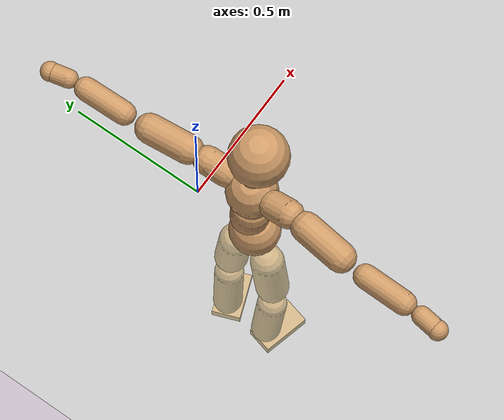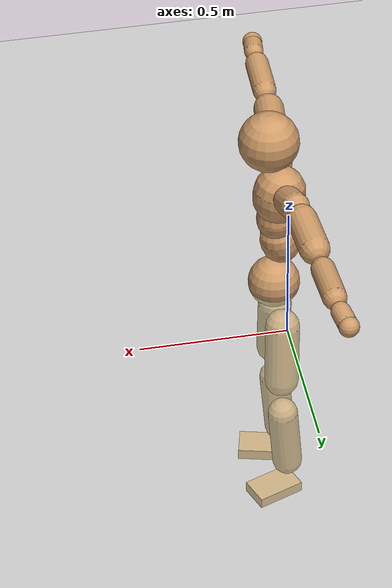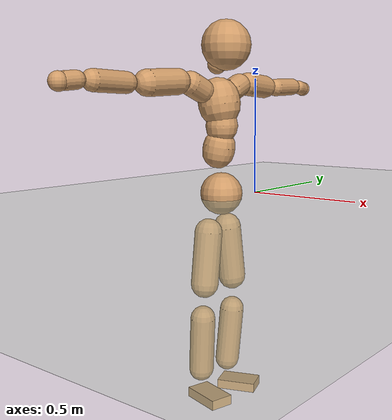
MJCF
<mujoco model="humanoid">
  <compiler coordinate="local"/>
  <default>
    <joint damping="0.0" armature="0.01" stiffness="0.0" limited="true"/>
    <geom conaffinity="1" condim="3" contype="7" margin="0.001" rgba="0.8 0.6 .4 1"/>
  </default>
  <asset>
    <texture type="skybox" builtin="gradient" rgb1=".4 .5 .6" rgb2="0 0 0" width="100" height="100"/>
    <texture builtin="flat" height="1278" mark="cross" markrgb="1 1 1" name="texgeom" random="0.01" rgb1="0.8 0.6 0.4" rgb2="0.8 0.6 0.4" type="cube" width="127"/>
    <texture builtin="checker" height="100" name="texplane" rgb1="0 0 0" rgb2="0.8 0.8 0.8" type="2d" width="100"/>
    <material name="MatPlane" reflectance="0.5" shininess="1" specular="1" texrepeat="60 60" texture="texplane"/>
    <material name="geom" texture="texgeom" texuniform="true"/>
  </asset>
  <worldbody>
    <light cutoff="100" diffuse="1 1 1" dir="-0 0 -1.3" directional="true" exponent="1" pos="0 0 1.3" specular=".1 .1 .1"/>
    <geom conaffinity="1" condim="3" name="floor" pos="0 0 0" rgba="0.8 0.9 0.8 1" size="100 100 .2" type="plane" material="MatPlane"/>
    <body name="Pelvis" pos="-0.0029 -0.237 0.0199">
      <freejoint name="Pelvis"/>
      <geom type="sphere" contype="1" conaffinity="1" density="500" size="0.0891" pos="0.0000 0.0000 0.0000" name="Pelvis"/>
      <body name="L_Hip" pos="-0.0209 0.0546 -0.0791">
        <joint name="L_Hip_x" type="hinge" pos="0 0 0" axis="1 0 0" stiffness="800" damping="80" armature="0.02" range="-180.0000 180.0000"/>
        <joint name="L_Hip_y" type="hinge" pos="0 0 0" axis="0 1 0" stiffness="800" damping="80" armature="0.02" range="-180.0000 180.0000"/>
        <joint name="L_Hip_z" type="hinge" pos="0 0 0" axis="0 0 1" stiffness="800" damping="80" armature="0.02" range="-180.0000 180.0000"/>
        <geom type="capsule" contype="1" conaffinity="1" density="500" fromto="0.0021 0.0087 -0.0744 0.0084 0.0347 -0.2976" size="0.059" name="L_Hip"/>
        <body name="L_Knee" pos="0.0105 0.0434 -0.372">
          <joint name="L_Knee_x" type="hinge" pos="0 0 0" axis="1 0 0" stiffness="800" damping="80" armature="0.02" range="-180.0000 180.0000"/>
          <joint name="L_Knee_y" type="hinge" pos="0 0 0" axis="0 1 0" stiffness="800" damping="80" armature="0.02" range="-180.0000 180.0000"/>
          <joint name="L_Knee_z" type="hinge" pos="0 0 0" axis="0 0 1" stiffness="800" damping="80" armature="0.02" range="-180.0000 180.0000"/>
          <geom type="capsule" contype="1" conaffinity="1" density="500" fromto="-0.0068 -0.0026 -0.0796 -0.0272 -0.0102 -0.3185" size="0.0522" name="L_Knee"/>
          <body name="L_Ankle" pos="-0.034 -0.0128 -0.3981">
            <joint name="L_Ankle_x" type="hinge" pos="0 0 0" axis="1 0 0" stiffness="800" damping="80" armature="0.02" range="-180.0000 180.0000"/>
            <joint name="L_Ankle_y" type="hinge" pos="0 0 0" axis="0 1 0" stiffness="800" damping="80" armature="0.02" range="-180.0000 180.0000"/>
            <joint name="L_Ankle_z" type="hinge" pos="0 0 0" axis="0 0 1" stiffness="800" damping="80" armature="0.02" range="-180.0000 180.0000"/>
            <geom type="box" contype="1" conaffinity="1" density="500" pos="0.0581 0.0219 -0.0289" size="0.0843 0.052 0.0197" quat="0.9838 0.0000 0.0000 0.1795" name="L_Ankle"/>
            <body name="L_Toe" pos="0.1161 0.0438 -0.0579">
              <joint name="L_Toe_x" type="hinge" pos="0 0 0" axis="1 0 0" stiffness="500" damping="50" armature="0.02" range="-180.0000 180.0000"/>
              <joint name="L_Toe_y" type="hinge" pos="0 0 0" axis="0 1 0" stiffness="500" damping="50" armature="0.02" range="-180.0000 180.0000"/>
              <joint name="L_Toe_z" type="hinge" pos="0 0 0" axis="0 0 1" stiffness="500" damping="50" armature="0.02" range="-180.0000 180.0000"/>
              <geom type="box" contype="1" conaffinity="1" density="500" pos="0.0000 0.0000 0.0293" size="0.001 0.0025 0.001" quat="0.9829 0.0000 0.0000 0.1840" name="L_Toe"/>
            </body>
          </body>
        </body>
      </body>
      <body name="R_Hip" pos="-0.0175 -0.0561 -0.0866">
        <joint name="R_Hip_x" type="hinge" pos="0 0 0" axis="1 0 0" stiffness="800" damping="80" armature="0.02" range="-180.0000 180.0000"/>
        <joint name="R_Hip_y" type="hinge" pos="0 0 0" axis="0 1 0" stiffness="800" damping="80" armature="0.02" range="-180.0000 180.0000"/>
        <joint name="R_Hip_z" type="hinge" pos="0 0 0" axis="0 0 1" stiffness="800" damping="80" armature="0.02" range="-180.0000 180.0000"/>
        <geom type="capsule" contype="1" conaffinity="1" density="500" fromto="-0.0004 -0.0084 -0.0731 -0.0018 -0.0336 -0.2926" size="0.0583" name="R_Hip"/>
        <body name="R_Knee" pos="-0.0022 -0.042 -0.3657">
          <joint name="R_Knee_x" type="hinge" pos="0 0 0" axis="1 0 0" stiffness="800" damping="80" armature="0.02" range="-180.0000 180.0000"/>
          <joint name="R_Knee_y" type="hinge" pos="0 0 0" axis="0 1 0" stiffness="800" damping="80" armature="0.02" range="-180.0000 180.0000"/>
          <joint name="R_Knee_z" type="hinge" pos="0 0 0" axis="0 0 1" stiffness="800" damping="80" armature="0.02" range="-180.0000 180.0000"/>
          <geom type="capsule" contype="1" conaffinity="1" density="500" fromto="-0.0064 0.0034 -0.0781 -0.0257 0.0137 -0.3123" size="0.0528" name="R_Knee"/>
          <body name="R_Ankle" pos="-0.0321 0.0171 -0.3904">
            <joint name="R_Ankle_x" type="hinge" pos="0 0 0" axis="1 0 0" stiffness="800" damping="80" armature="0.02" range="-180.0000 180.0000"/>
            <joint name="R_Ankle_y" type="hinge" pos="0 0 0" axis="0 1 0" stiffness="800" damping="80" armature="0.02" range="-180.0000 180.0000"/>
            <joint name="R_Ankle_z" type="hinge" pos="0 0 0" axis="0 0 1" stiffness="800" damping="80" armature="0.02" range="-180.0000 180.0000"/>
            <geom type="box" contype="1" conaffinity="1" density="500" pos="0.0626 -0.0158 -0.0293" size="0.0878 0.0496 0.0205" quat="0.9923 0.0000 0.0000 -0.1237" name="R_Ankle"/>
            <body name="R_Toe" pos="0.1251 -0.0317 -0.0586">
              <joint name="R_Toe_x" type="hinge" pos="0 0 0" axis="1 0 0" stiffness="500" damping="50" armature="0.02" range="-180.0000 180.0000"/>
              <joint name="R_Toe_y" type="hinge" pos="0 0 0" axis="0 1 0" stiffness="500" damping="50" armature="0.02" range="-180.0000 180.0000"/>
              <joint name="R_Toe_z" type="hinge" pos="0 0 0" axis="0 0 1" stiffness="500" damping="50" armature="0.02" range="-180.0000 180.0000"/>
              <geom type="box" contype="1" conaffinity="1" density="500" pos="0.0000 0.0000 0.0303" size="0.001 0.0024 0.0011" quat="0.9934 0.0000 0.0000 -0.1144" name="R_Toe"/>
            </body>
          </body>
        </body>
      </body>
      <body name="Torso" pos="-0.0322 0.004 0.1172">
        <joint name="Torso_x" type="hinge" pos="0 0 0" axis="1 0 0" stiffness="1000" damping="100" armature="0.02" range="-180.0000 180.0000"/>
        <joint name="Torso_y" type="hinge" pos="0 0 0" axis="0 1 0" stiffness="1000" damping="100" armature="0.02" range="-180.0000 180.0000"/>
        <joint name="Torso_z" type="hinge" pos="0 0 0" axis="0 0 1" stiffness="1000" damping="100" armature="0.02" range="-180.0000 180.0000"/>
        <geom type="capsule" contype="1" conaffinity="1" density="500" fromto="0.0166 0.0029 0.0827 0.0111 0.0019 0.0551" size="0.067704" name="Torso"/>
        <body name="Spine" pos="0.0277 0.0048 0.1378">
          <joint name="Spine_x" type="hinge" pos="0 0 0" axis="1 0 0" stiffness="1000" damping="100" armature="0.02" range="-180.0000 180.0000"/>
          <joint name="Spine_y" type="hinge" pos="0 0 0" axis="0 1 0" stiffness="1000" damping="100" armature="0.02" range="-180.0000 180.0000"/>
          <joint name="Spine_z" type="hinge" pos="0 0 0" axis="0 0 1" stiffness="1000" damping="100" armature="0.02" range="-180.0000 180.0000"/>
          <geom type="capsule" contype="1" conaffinity="1" density="500" fromto="0.0012 -0.0010 0.0336 0.0008 -0.0006 0.0224" size="0.067053" name="Spine"/>
          <body name="Chest" pos="0.0019 -0.0016 0.056">
            <joint name="Chest_x" type="hinge" pos="0 0 0" axis="1 0 0" stiffness="1000" damping="100" armature="0.02" range="-180.0000 180.0000"/>
            <joint name="Chest_y" type="hinge" pos="0 0 0" axis="0 1 0" stiffness="1000" damping="100" armature="0.02" range="-180.0000 180.0000"/>
            <joint name="Chest_z" type="hinge" pos="0 0 0" axis="0 0 1" stiffness="1000" damping="100" armature="0.02" range="-180.0000 180.0000"/>
            <geom type="capsule" contype="1" conaffinity="1" density="500" fromto="-0.0134 -0.0049 0.0835 -0.0089 -0.0033 0.0556" size="0.087606" name="Chest"/>
            <body name="Neck" pos="-0.0262 -0.013 0.2032">
              <joint name="Neck_x" type="hinge" pos="0 0 0" axis="1 0 0" stiffness="500" damping="50" armature="0.02" range="-180.0000 180.0000"/>
              <joint name="Neck_y" type="hinge" pos="0 0 0" axis="0 1 0" stiffness="500" damping="50" armature="0.02" range="-180.0000 180.0000"/>
              <joint name="Neck_z" type="hinge" pos="0 0 0" axis="0 0 1" stiffness="500" damping="50" armature="0.02" range="-180.0000 180.0000"/>
              <geom type="capsule" contype="1" conaffinity="1" density="500" fromto="0.0104 0.0020 0.0189 0.0416 0.0080 0.0755" size="0.040269" name="Neck"/>
              <body name="Head" pos="0.052 0.0101 0.0943">
                <joint name="Head_x" type="hinge" pos="0 0 0" axis="1 0 0" stiffness="500" damping="50" armature="0.02" range="-180.0000 180.0000"/>
                <joint name="Head_y" type="hinge" pos="0 0 0" axis="0 1 0" stiffness="500" damping="50" armature="0.02" range="-180.0000 180.0000"/>
                <joint name="Head_z" type="hinge" pos="0 0 0" axis="0 0 1" stiffness="500" damping="50" armature="0.02" range="-180.0000 180.0000"/>
                <geom type="sphere" contype="1" conaffinity="1" density="500" size="0.1021" pos="0.0000 0.0000 0.0000" name="Head"/>
              </body>
            </body>
            <body name="L_Thorax" pos="-0.018 0.0658 0.1078">
              <joint name="L_Thorax_x" type="hinge" pos="0 0 0" axis="1 0 0" stiffness="500" damping="50" armature="0.02" range="-180.0000 180.0000"/>
              <joint name="L_Thorax_y" type="hinge" pos="0 0 0" axis="0 1 0" stiffness="500" damping="50" armature="0.02" range="-180.0000 180.0000"/>
              <joint name="L_Thorax_z" type="hinge" pos="0 0 0" axis="0 0 1" stiffness="500" damping="50" armature="0.02" range="-180.0000 180.0000"/>
              <geom type="capsule" contype="1" conaffinity="1" density="500" fromto="-0.0032 0.0231 0.0086 -0.0127 0.0923 0.0346" size="0.0491" name="L_Thorax"/>
              <body name="L_Shoulder" pos="-0.0159 0.1153 0.0432">
                <joint name="L_Shoulder_x" type="hinge" pos="0 0 0" axis="1 0 0" stiffness="500" damping="50" armature="0.02" range="-720.0000 720.0000"/>
                <joint name="L_Shoulder_y" type="hinge" pos="0 0 0" axis="0 1 0" stiffness="500" damping="50" armature="0.02" range="-720.0000 720.0000"/>
                <joint name="L_Shoulder_z" type="hinge" pos="0 0 0" axis="0 0 1" stiffness="500" damping="50" armature="0.02" range="-720.0000 720.0000"/>
                <geom type="capsule" contype="1" conaffinity="1" density="500" fromto="-0.0038 0.0484 -0.0029 -0.0151 0.1936 -0.0116" size="0.0508" name="L_Shoulder"/>
                <body name="L_Elbow" pos="-0.0189 0.242 -0.0145">
                  <joint name="L_Elbow_x" type="hinge" pos="0 0 0" axis="1 0 0" stiffness="500" damping="50" armature="0.02" range="-720.0000 720.0000"/>
                  <joint name="L_Elbow_y" type="hinge" pos="0 0 0" axis="0 1 0" stiffness="500" damping="50" armature="0.02" range="-720.0000 720.0000"/>
                  <joint name="L_Elbow_z" type="hinge" pos="0 0 0" axis="0 0 1" stiffness="500" damping="50" armature="0.02" range="-720.0000 720.0000"/>
                  <geom type="capsule" contype="1" conaffinity="1" density="500" fromto="-0.0017 0.0501 0.0022 -0.0067 0.2002 0.0088" size="0.0399" name="L_Elbow"/>
                  <body name="L_Wrist" pos="-0.0083 0.2503 0.011">
                    <joint name="L_Wrist_x" type="hinge" pos="0 0 0" axis="1 0 0" stiffness="300" damping="30" armature="0.02" range="-180.0000 180.0000"/>
                    <joint name="L_Wrist_y" type="hinge" pos="0 0 0" axis="0 1 0" stiffness="300" damping="30" armature="0.02" range="-180.0000 180.0000"/>
                    <joint name="L_Wrist_z" type="hinge" pos="0 0 0" axis="0 0 1" stiffness="300" damping="30" armature="0.02" range="-180.0000 180.0000"/>
                    <geom type="capsule" contype="1" conaffinity="1" density="500" fromto="-0.0030 0.0166 -0.0021 -0.0119 0.0663 -0.0082" size="0.0326" name="L_Wrist"/>
                    <body name="L_Hand" pos="-0.0149 0.0829 -0.0103">
                      <joint name="L_Hand_x" type="hinge" pos="0 0 0" axis="1 0 0" stiffness="300" damping="30" armature="0.02" range="-180.0000 180.0000"/>
                      <joint name="L_Hand_y" type="hinge" pos="0 0 0" axis="0 1 0" stiffness="300" damping="30" armature="0.02" range="-180.0000 180.0000"/>
                      <joint name="L_Hand_z" type="hinge" pos="0 0 0" axis="0 0 1" stiffness="300" damping="30" armature="0.02" range="-180.0000 180.0000"/>
                      <geom type="sphere" contype="1" conaffinity="1" density="500" size="0.0341" pos="0.0000 0.0000 0.0000" name="L_Hand"/>
                    </body>
                  </body>
                </body>
              </body>
            </body>
            <body name="R_Thorax" pos="-0.023 -0.0775 0.1063">
              <joint name="R_Thorax_x" type="hinge" pos="0 0 0" axis="1 0 0" stiffness="500" damping="50" armature="0.02" range="-180.0000 180.0000"/>
              <joint name="R_Thorax_y" type="hinge" pos="0 0 0" axis="0 1 0" stiffness="500" damping="50" armature="0.02" range="-180.0000 180.0000"/>
              <joint name="R_Thorax_z" type="hinge" pos="0 0 0" axis="0 0 1" stiffness="500" damping="50" armature="0.02" range="-180.0000 180.0000"/>
              <geom type="capsule" contype="1" conaffinity="1" density="500" fromto="-0.0013 -0.0213 0.0088 -0.0051 -0.0852 0.0352" size="0.0494" name="R_Thorax"/>
              <body name="R_Shoulder" pos="-0.0064 -0.1064 0.044">
                <joint name="R_Shoulder_x" type="hinge" pos="0 0 0" axis="1 0 0" stiffness="500" damping="50" armature="0.02" range="-720.0000 720.0000"/>
                <joint name="R_Shoulder_y" type="hinge" pos="0 0 0" axis="0 1 0" stiffness="500" damping="50" armature="0.02" range="-720.0000 720.0000"/>
                <joint name="R_Shoulder_z" type="hinge" pos="0 0 0" axis="0 0 1" stiffness="500" damping="50" armature="0.02" range="-720.0000 720.0000"/>
                <geom type="capsule" contype="1" conaffinity="1" density="500" fromto="-0.0054 -0.0490 -0.0029 -0.0217 -0.1959 -0.0115" size="0.0517" name="R_Shoulder"/>
                <body name="R_Elbow" pos="-0.0271 -0.2449 -0.0144">
                  <joint name="R_Elbow_x" type="hinge" pos="0 0 0" axis="1 0 0" stiffness="500" damping="50" armature="0.02" range="-720.0000 720.0000"/>
                  <joint name="R_Elbow_y" type="hinge" pos="0 0 0" axis="0 1 0" stiffness="500" damping="50" armature="0.02" range="-720.0000 720.0000"/>
                  <joint name="R_Elbow_z" type="hinge" pos="0 0 0" axis="0 0 1" stiffness="500" damping="50" armature="0.02" range="-720.0000 720.0000"/>
                  <geom type="capsule" contype="1" conaffinity="1" density="500" fromto="-0.0011 -0.0510 0.0014 -0.0044 -0.2040 0.0056" size="0.0405" name="R_Elbow"/>
                  <body name="R_Wrist" pos="-0.0055 -0.255 0.007">
                    <joint name="R_Wrist_x" type="hinge" pos="0 0 0" axis="1 0 0" stiffness="300" damping="30" armature="0.02" range="-180.0000 180.0000"/>
                    <joint name="R_Wrist_y" type="hinge" pos="0 0 0" axis="0 1 0" stiffness="300" damping="30" armature="0.02" range="-180.0000 180.0000"/>
                    <joint name="R_Wrist_z" type="hinge" pos="0 0 0" axis="0 0 1" stiffness="300" damping="30" armature="0.02" range="-180.0000 180.0000"/>
                    <geom type="capsule" contype="1" conaffinity="1" density="500" fromto="-0.0020 -0.0169 -0.0016 -0.0078 -0.0677 -0.0066" size="0.0331" name="R_Wrist"/>
                    <body name="R_Hand" pos="-0.0098 -0.0847 -0.0082">
                      <joint name="R_Hand_x" type="hinge" pos="0 0 0" axis="1 0 0" stiffness="300" damping="30" armature="0.02" range="-180.0000 180.0000"/>
                      <joint name="R_Hand_y" type="hinge" pos="0 0 0" axis="0 1 0" stiffness="300" damping="30" armature="0.02" range="-180.0000 180.0000"/>
                      <joint name="R_Hand_z" type="hinge" pos="0 0 0" axis="0 0 1" stiffness="300" damping="30" armature="0.02" range="-180.0000 180.0000"/>
                      <geom type="sphere" contype="1" conaffinity="1" density="500" size="0.0345" pos="0.0000 0.0000 0.0000" name="R_Hand"/>
                    </body>
                  </body>
                </body>
              </body>
            </body>
          </body>
        </body>
      </body>
    </body>
  </worldbody>
  <actuator>
    <motor name="L_Hip_x" joint="L_Hip_x" gear="500"/>
    <motor name="L_Hip_y" joint="L_Hip_y" gear="500"/>
    <motor name="L_Hip_z" joint="L_Hip_z" gear="500"/>
    <motor name="L_Knee_x" joint="L_Knee_x" gear="500"/>
    <motor name="L_Knee_y" joint="L_Knee_y" gear="500"/>
    <motor name="L_Knee_z" joint="L_Knee_z" gear="500"/>
    <motor name="L_Ankle_x" joint="L_Ankle_x" gear="500"/>
    <motor name="L_Ankle_y" joint="L_Ankle_y" gear="500"/>
    <motor name="L_Ankle_z" joint="L_Ankle_z" gear="500"/>
    <motor name="L_Toe_x" joint="L_Toe_x" gear="500"/>
    <motor name="L_Toe_y" joint="L_Toe_y" gear="500"/>
    <motor name="L_Toe_z" joint="L_Toe_z" gear="500"/>
    <motor name="R_Hip_x" joint="R_Hip_x" gear="500"/>
    <motor name="R_Hip_y" joint="R_Hip_y" gear="500"/>
    <motor name="R_Hip_z" joint="R_Hip_z" gear="500"/>
    <motor name="R_Knee_x" joint="R_Knee_x" gear="500"/>
    <motor name="R_Knee_y" joint="R_Knee_y" gear="500"/>
    <motor name="R_Knee_z" joint="R_Knee_z" gear="500"/>
    <motor name="R_Ankle_x" joint="R_Ankle_x" gear="500"/>
    <motor name="R_Ankle_y" joint="R_Ankle_y" gear="500"/>
    <motor name="R_Ankle_z" joint="R_Ankle_z" gear="500"/>
    <motor name="R_Toe_x" joint="R_Toe_x" gear="500"/>
    <motor name="R_Toe_y" joint="R_Toe_y" gear="500"/>
    <motor name="R_Toe_z" joint="R_Toe_z" gear="500"/>
    <motor name="Torso_x" joint="Torso_x" gear="500"/>
    <motor name="Torso_y" joint="Torso_y" gear="500"/>
    <motor name="Torso_z" joint="Torso_z" gear="500"/>
    <motor name="Spine_x" joint="Spine_x" gear="500"/>
    <motor name="Spine_y" joint="Spine_y" gear="500"/>
    <motor name="Spine_z" joint="Spine_z" gear="500"/>
    <motor name="Chest_x" joint="Chest_x" gear="500"/>
    <motor name="Chest_y" joint="Chest_y" gear="500"/>
    <motor name="Chest_z" joint="Chest_z" gear="500"/>
    <motor name="Neck_x" joint="Neck_x" gear="500"/>
    <motor name="Neck_y" joint="Neck_y" gear="500"/>
    <motor name="Neck_z" joint="Neck_z" gear="500"/>
    <motor name="Head_x" joint="Head_x" gear="500"/>
    <motor name="Head_y" joint="Head_y" gear="500"/>
    <motor name="Head_z" joint="Head_z" gear="500"/>
    <motor name="L_Thorax_x" joint="L_Thorax_x" gear="500"/>
    <motor name="L_Thorax_y" joint="L_Thorax_y" gear="500"/>
    <motor name="L_Thorax_z" joint="L_Thorax_z" gear="500"/>
    <motor name="L_Shoulder_x" joint="L_Shoulder_x" gear="500"/>
    <motor name="L_Shoulder_y" joint="L_Shoulder_y" gear="500"/>
    <motor name="L_Shoulder_z" joint="L_Shoulder_z" gear="500"/>
    <motor name="L_Elbow_x" joint="L_Elbow_x" gear="500"/>
    <motor name="L_Elbow_y" joint="L_Elbow_y" gear="500"/>
    <motor name="L_Elbow_z" joint="L_Elbow_z" gear="500"/>
    <motor name="L_Wrist_x" joint="L_Wrist_x" gear="500"/>
    <motor name="L_Wrist_y" joint="L_Wrist_y" gear="500"/>
    <motor name="L_Wrist_z" joint="L_Wrist_z" gear="500"/>
    <motor name="L_Hand_x" joint="L_Hand_x" gear="500"/>
    <motor name="L_Hand_y" joint="L_Hand_y" gear="500"/>
    <motor name="L_Hand_z" joint="L_Hand_z" gear="500"/>
    <motor name="R_Thorax_x" joint="R_Thorax_x" gear="500"/>
    <motor name="R_Thorax_y" joint="R_Thorax_y" gear="500"/>
    <motor name="R_Thorax_z" joint="R_Thorax_z" gear="500"/>
    <motor name="R_Shoulder_x" joint="R_Shoulder_x" gear="500"/>
    <motor name="R_Shoulder_y" joint="R_Shoulder_y" gear="500"/>
    <motor name="R_Shoulder_z" joint="R_Shoulder_z" gear="500"/>
    <motor name="R_Elbow_x" joint="R_Elbow_x" gear="500"/>
    <motor name="R_Elbow_y" joint="R_Elbow_y" gear="500"/>
    <motor name="R_Elbow_z" joint="R_Elbow_z" gear="500"/>
    <motor name="R_Wrist_x" joint="R_Wrist_x" gear="500"/>
    <motor name="R_Wrist_y" joint="R_Wrist_y" gear="500"/>
    <motor name="R_Wrist_z" joint="R_Wrist_z" gear="500"/>
    <motor name="R_Hand_x" joint="R_Hand_x" gear="500"/>
    <motor name="R_Hand_y" joint="R_Hand_y" gear="500"/>
    <motor name="R_Hand_z" joint="R_Hand_z" gear="500"/>
  </actuator>
  <contact>
    <exclude body1="Torso" body2="Chest"/>
    <exclude body1="Head" body2="Chest"/>
    <exclude body1="R_Knee" body2="R_Toe"/>
    <exclude body1="R_Knee" body2="L_Ankle"/>
    <exclude body1="R_Knee" body2="L_Toe"/>
    <exclude body1="L_Knee" body2="L_Toe"/>
    <exclude body1="L_Knee" body2="R_Ankle"/>
    <exclude body1="L_Knee" body2="R_Toe"/>
    <exclude body1="L_Shoulder" body2="Chest"/>
    <exclude body1="R_Shoulder" body2="Chest"/>
  </contact>
  <sensor/>
  <size njmax="700" nconmax="700"/>
</mujoco>
